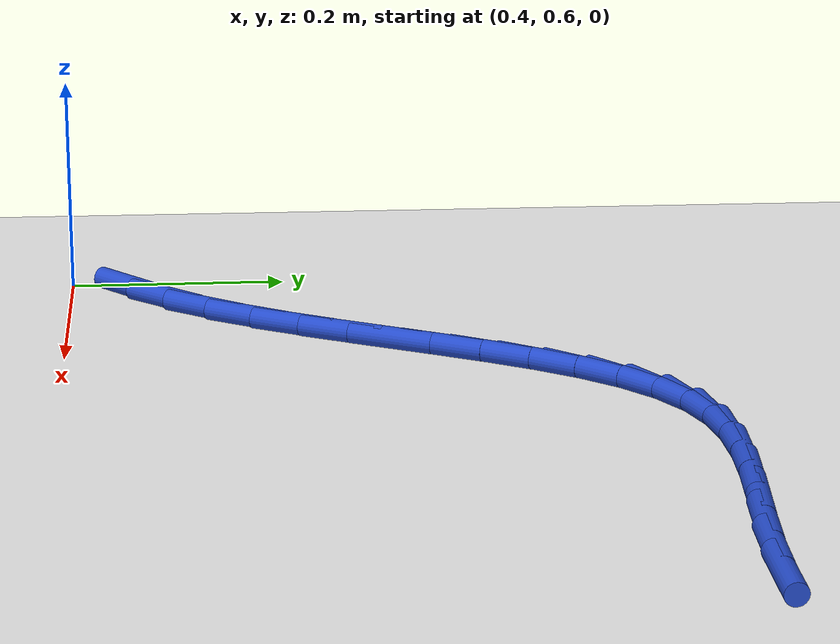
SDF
<sdf version="1.6">
 <world name="default">
  <model name="ground_plane">
   <static>1</static>
   <link name="link">
    <collision name="collision">
     <geometry><plane><normal>0 0 1</normal><size>100 100</size></plane></geometry>
     <surface><friction><ode><mu>100</mu><mu2>50</mu2></ode></friction></surface>
    </collision>
    <visual name="visual">
     <cast_shadows>0</cast_shadows>
     <geometry><plane><normal>0 0 1</normal><size>100 100</size></plane></geometry>
     <material>
      <script><uri>file://media/materials/scripts/gazebo.material</uri><name>Gazebo/WhiteGlow</name></script>
     </material>
    </visual>
   </link>
  </model>
  <model name="line">
   <link name="link_19">
    <pose>0.4323400367677581 0.6561001897518708 0.01 0 1.57 0.7879846610081189</pose>
    <collision name="collision">
     <geometry><cylinder><radius>0.01</radius><length>0.08</length></cylinder></geometry>
    </collision>
    <visual name="visual">
     <material>
      <script><name>Gazebo/Blue</name><uri>file://media/materials/scripts/gazebo.material</uri></script>
     </material>
     <geometry><cylinder><radius>0.01</radius><length>0.08</length></cylinder></geometry>
    </visual>
   </link>
   <link name="link_20">
    <pose>0.4649314827230001 0.6888606686816225 0.01 0 1.57 0.8830834872635878</pose>
    <collision name="collision">
     <geometry><cylinder><radius>0.01</radius><length>0.08</length></cylinder></geometry>
    </collision>
    <visual name="visual">
     <material>
      <script><name>Gazebo/Blue</name><uri>file://media/materials/scripts/gazebo.material</uri></script>
     </material>
     <geometry><cylinder><radius>0.01</radius><length>0.08</length></cylinder></geometry>
    </visual>
   </link>
   <link name="link_21">
    <pose>0.4945708826316573 0.7249403574108669 0.01 0 1.57 0.9777289401478115</pose>
    <collision name="collision">
     <geometry><cylinder><radius>0.01</radius><length>0.08</length></cylinder></geometry>
    </collision>
    <visual name="visual">
     <material>
      <script><name>Gazebo/Blue</name><uri>file://media/materials/scripts/gazebo.material</uri></script>
     </material>
     <geometry><cylinder><radius>0.01</radius><length>0.08</length></cylinder></geometry>
    </visual>
   </link>
   <link name="link_22">
    <pose>0.5211214113356271 0.7643324058174049 0.01 0 1.57 1.0487846464671375</pose>
    <collision name="collision">
     <geometry><cylinder><radius>0.01</radius><length>0.08</length></cylinder></geometry>
    </collision>
    <visual name="visual">
     <material>
      <script><name>Gazebo/Blue</name><uri>file://media/materials/scripts/gazebo.material</uri></script>
     </material>
     <geometry><cylinder><radius>0.01</radius><length>0.08</length></cylinder></geometry>
    </visual>
   </link>
   <link name="link_23">
    <pose>0.5451851901173571 0.8061652805570834 0.01 0 1.57 1.0965948639715848</pose>
    <collision name="collision">
     <geometry><cylinder><radius>0.01</radius><length>0.08</length></cylinder></geometry>
    </collision>
    <visual name="visual">
     <material>
      <script><name>Gazebo/Blue</name><uri>file://media/materials/scripts/gazebo.material</uri></script>
     </material>
     <geometry><cylinder><radius>0.01</radius><length>0.08</length></cylinder></geometry>
    </visual>
   </link>
   <link name="link_24">
    <pose>0.5674252973785667 0.8494961188964985 0.01 0 1.57 1.1230122361032615</pose>
    <collision name="collision">
     <geometry><cylinder><radius>0.01</radius><length>0.08</length></cylinder></geometry>
    </collision>
    <visual name="visual">
     <material>
      <script><name>Gazebo/Blue</name><uri>file://media/materials/scripts/gazebo.material</uri></script>
     </material>
     <geometry><cylinder><radius>0.01</radius><length>0.08</length></cylinder></geometry>
    </visual>
   </link>
   <link name="link_25">
    <pose>0.5885048115209753 0.8933820581022464 0.01 0 1.57 1.128842787347342</pose>
    <collision name="collision">
     <geometry><cylinder><radius>0.01</radius><length>0.08</length></cylinder></geometry>
    </collision>
    <visual name="visual">
     <material>
      <script><name>Gazebo/Blue</name><uri>file://media/materials/scripts/gazebo.material</uri></script>
     </material>
     <geometry><cylinder><radius>0.01</radius><length>0.08</length></cylinder></geometry>
    </visual>
   </link>
   <link name="link_26">
    <pose>0.6090868109463021 0.9368802354409228 0.01 0 1.57 1.113547654454905</pose>
    <collision name="collision">
     <geometry><cylinder><radius>0.01</radius><length>0.08</length></cylinder></geometry>
    </collision>
    <visual name="visual">
     <material>
      <script><name>Gazebo/Blue</name><uri>file://media/materials/scripts/gazebo.material</uri></script>
     </material>
     <geometry><cylinder><radius>0.01</radius><length>0.08</length></cylinder></geometry>
    </visual>
   </link>
   <link name="link_27">
    <pose>0.6298343740562672 0.9790477881791244 0.01 0 1.57 1.0750148970025242</pose>
    <collision name="collision">
     <geometry><cylinder><radius>0.01</radius><length>0.08</length></cylinder></geometry>
    </collision>
    <visual name="visual">
     <material>
      <script><name>Gazebo/Blue</name><uri>file://media/materials/scripts/gazebo.material</uri></script>
     </material>
     <geometry><cylinder><radius>0.01</radius><length>0.08</length></cylinder></geometry>
    </visual>
   </link>
   <link name="link_28">
    <pose>0.6514105792525894 1.0189418535834471 0.01 0 1.57 1.0093718282133637</pose>
    <collision name="collision">
     <geometry><cylinder><radius>0.01</radius><length>0.08</length></cylinder></geometry>
    </collision>
    <visual name="visual">
     <material>
      <script><name>Gazebo/Blue</name><uri>file://media/materials/scripts/gazebo.material</uri></script>
     </material>
     <geometry><cylinder><radius>0.01</radius><length>0.08</length></cylinder></geometry>
    </visual>
   </link>
   <link name="link_29">
    <pose>0.6744785049369887 1.055619568920487 0.01 0 1.57 0.9110851317835824</pose>
    <collision name="collision">
     <geometry><cylinder><radius>0.01</radius><length>0.08</length></cylinder></geometry>
    </collision>
    <visual name="visual">
     <material>
      <script><name>Gazebo/Blue</name><uri>file://media/materials/scripts/gazebo.material</uri></script>
     </material>
     <geometry><cylinder><radius>0.01</radius><length>0.08</length></cylinder></geometry>
    </visual>
   </link>
   <link name="link_30">
    <pose>0.6997012295111842 1.0881380714568403 0.01 0 1.57 0.7741435303618186</pose>
    <collision name="collision">
     <geometry><cylinder><radius>0.01</radius><length>0.08</length></cylinder></geometry>
    </collision>
    <visual name="visual">
     <material>
      <script><name>Gazebo/Blue</name><uri>file://media/materials/scripts/gazebo.material</uri></script>
     </material>
     <geometry><cylinder><radius>0.01</radius><length>0.08</length></cylinder></geometry>
    </visual>
   </link>
   <link name="link_31">
    <pose>0.7277418313768955 1.1155544984591035 0.01 0 1.57 0.5958050045412697</pose>
    <collision name="collision">
     <geometry><cylinder><radius>0.01</radius><length>0.08</length></cylinder></geometry>
    </collision>
    <visual name="visual">
     <material>
      <script><name>Gazebo/Blue</name><uri>file://media/materials/scripts/gazebo.material</uri></script>
     </material>
     <geometry><cylinder><radius>0.01</radius><length>0.08</length></cylinder></geometry>
    </visual>
   </link>
   <link name="link_32">
    <pose>0.7592633889358422 1.1369259871938717 0.01 0 1.57 0.3859506271365281</pose>
    <collision name="collision">
     <geometry><cylinder><radius>0.01</radius><length>0.08</length></cylinder></geometry>
    </collision>
    <visual name="visual">
     <material>
      <script><name>Gazebo/Blue</name><uri>file://media/materials/scripts/gazebo.material</uri></script>
     </material>
     <geometry><cylinder><radius>0.01</radius><length>0.08</length></cylinder></geometry>
    </visual>
   </link>
   <link name="link_33">
    <pose>0.7948770134945562 1.1513968419011515 0.01 0 1.57 0.2000328599117744</pose>
    <collision name="collision">
     <geometry><cylinder><radius>0.01</radius><length>0.08</length></cylinder></geometry>
    </collision>
    <visual name="visual">
     <material>
      <script><name>Gazebo/Blue</name><uri>file://media/materials/scripts/gazebo.material</uri></script>
     </material>
     <geometry><cylinder><radius>0.01</radius><length>0.08</length></cylinder></geometry>
    </visual>
   </link>
   <link name="link_34">
    <pose>0.8344175385846238 1.1594134558432942 0.01 0 1.57 0.07036660356365947</pose>
    <collision name="collision">
     <geometry><cylinder><radius>0.01</radius><length>0.08</length></cylinder></geometry>
    </collision>
    <visual name="visual">
     <material>
      <script><name>Gazebo/Blue</name><uri>file://media/materials/scripts/gazebo.material</uri></script>
     </material>
     <geometry><cylinder><radius>0.01</radius><length>0.08</length></cylinder></geometry>
    </visual>
   </link>
   <link name="link_35">
    <pose>0.8771228837683843 1.1624234555418365 0.01 0 1.57 -0.011604383951390866</pose>
    <collision name="collision">
     <geometry><cylinder><radius>0.01</radius><length>0.08</length></cylinder></geometry>
    </collision>
    <visual name="visual">
     <material>
      <script><name>Gazebo/Blue</name><uri>file://media/materials/scripts/gazebo.material</uri></script>
     </material>
     <geometry><cylinder><radius>0.01</radius><length>0.08</length></cylinder></geometry>
    </visual>
   </link>
   <link name="link_36">
    <pose>0.9222156523390947 1.1619001582523276 0.01 0 1.57 -0.05525680608570604</pose>
    <collision name="collision">
     <geometry><cylinder><radius>0.01</radius><length>0.08</length></cylinder></geometry>
    </collision>
    <visual name="visual">
     <material>
      <script><name>Gazebo/Blue</name><uri>file://media/materials/scripts/gazebo.material</uri></script>
     </material>
     <geometry><cylinder><radius>0.01</radius><length>0.08</length></cylinder></geometry>
    </visual>
   </link>
   <link name="link_37">
    <pose>0.9689184475900112 1.1593168812303176 0.01 0 1.57 -0.0665872467622741</pose>
    <collision name="collision">
     <geometry><cylinder><radius>0.01</radius><length>0.08</length></cylinder></geometry>
    </collision>
    <visual name="visual">
     <material>
      <script><name>Gazebo/Blue</name><uri>file://media/materials/scripts/gazebo.material</uri></script>
     </material>
     <geometry><cylinder><radius>0.01</radius><length>0.08</length></cylinder></geometry>
    </visual>
   </link>
   <link name="link_38">
    <pose>1.0164538728143908 1.156146941731356 0.01 0 1.57 -0.04794082038904211</pose>
    <collision name="collision">
     <geometry><cylinder><radius>0.01</radius><length>0.08</length></cylinder></geometry>
    </collision>
    <visual name="visual">
     <material>
      <script><name>Gazebo/Blue</name><uri>file://media/materials/scripts/gazebo.material</uri></script>
     </material>
     <geometry><cylinder><radius>0.01</radius><length>0.08</length></cylinder></geometry>
    </visual>
   </link>
   <link name="link_39">
    <pose>1.06404453130549 1.153863657010992 0.01 0 1.57 -0.004198208526718472</pose>
    <collision name="collision">
     <geometry><cylinder><radius>0.01</radius><length>0.08</length></cylinder></geometry>
    </collision>
    <visual name="visual">
     <material>
      <script><name>Gazebo/Blue</name><uri>file://media/materials/scripts/gazebo.material</uri></script>
     </material>
     <geometry><cylinder><radius>0.01</radius><length>0.08</length></cylinder></geometry>
    </visual>
   </link>
   <link name="link_40">
    <pose>1.110997548314537 1.1536665372965527 0.01 0 1.57 0.03234485522576058</pose>
    <collision name="collision">
     <geometry><cylinder><radius>0.01</radius><length>0.08</length></cylinder></geometry>
    </collision>
    <visual name="visual">
     <material>
      <script><name>Gazebo/Blue</name><uri>file://media/materials/scripts/gazebo.material</uri></script>
     </material>
     <geometry><cylinder><radius>0.01</radius><length>0.08</length></cylinder></geometry>
    </visual>
   </link>
  </model>
 </world>
</sdf>
